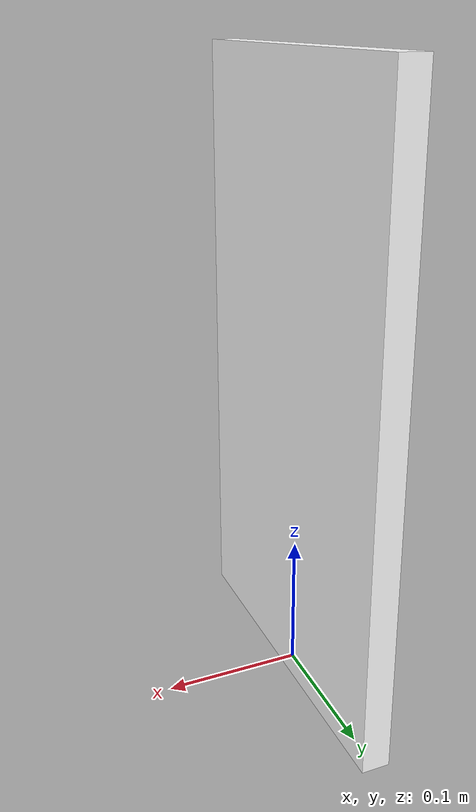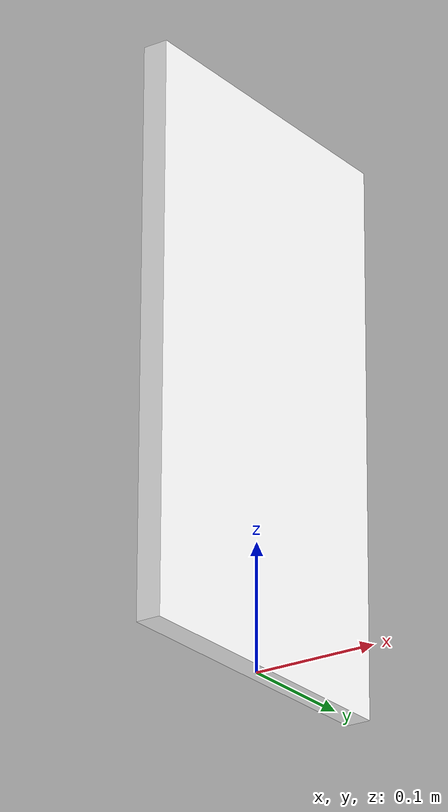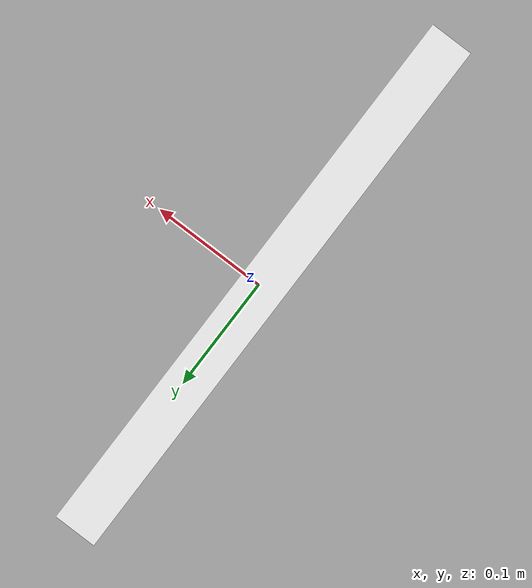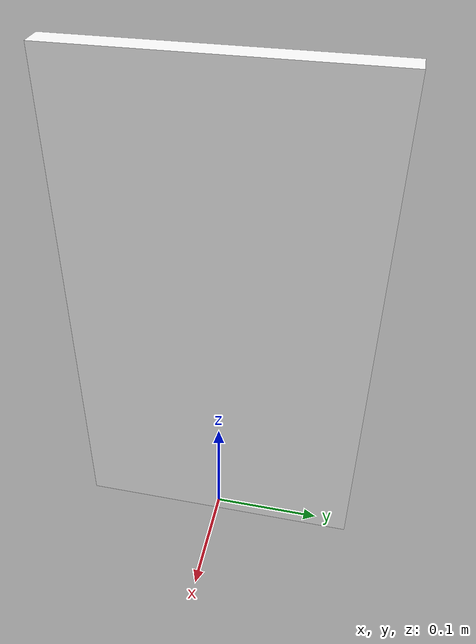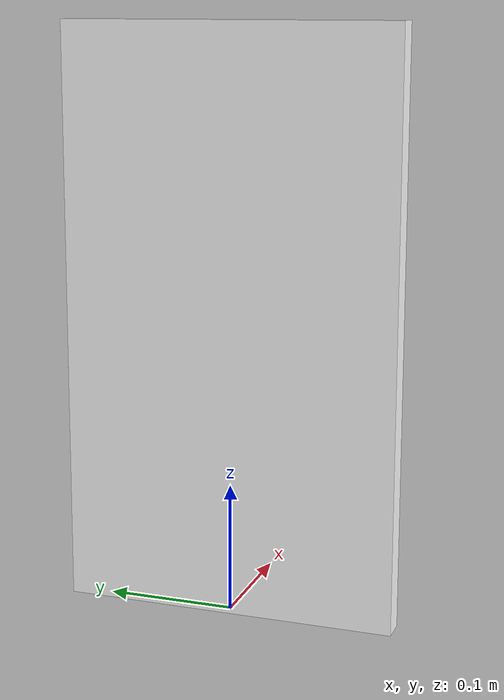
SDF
<?xml version='1.0'?>
<sdf version="1.7">
  <model name="coco_traffic_light">
    <!-- Origin at bottom-center (z=0 at contact). -->
    <static>true</static>
    <link name="link">
      <collision name="collision">
        <pose>0 0 0.225 0 0 0</pose>
        <geometry>
          <box>
            <size>0.02 0.26 0.45</size>
          </box>
        </geometry>
      </collision>
      <visual name="visual">
        <pose>0 0 0.225 0 0 0</pose>
        <geometry>
          <box>
            <size>0.02 0.26 0.45</size>
          </box>
        </geometry>
        <material>
          <diffuse>1 1 1 1</diffuse>
          <specular>0.1 0.1 0.1 1</specular>
          <double_sided>true</double_sided>
          <pbr>
            <metal>
              <albedo_map>materials/textures/traffic_light.png</albedo_map>
              <roughness>1.0</roughness>
              <metalness>0.0</metalness>
            </metal>
          </pbr>
        </material>
      </visual>
    </link>
  </model>
</sdf>
